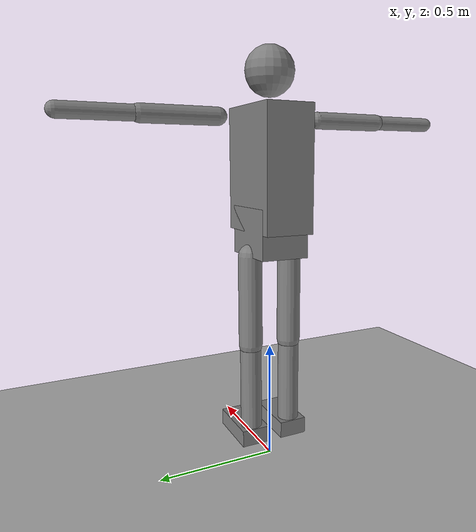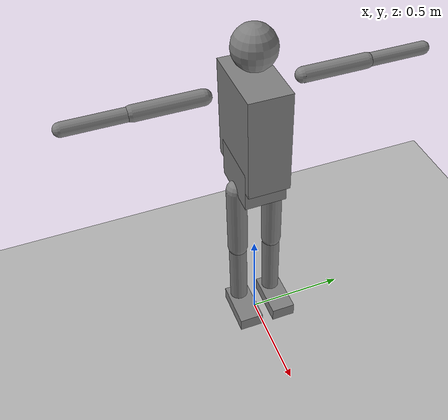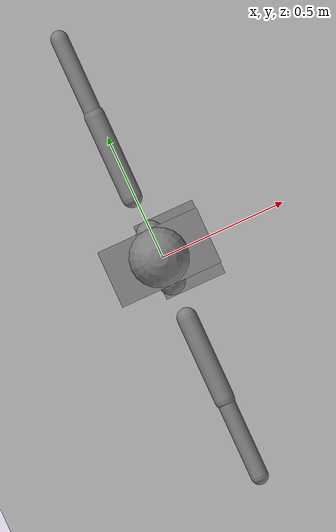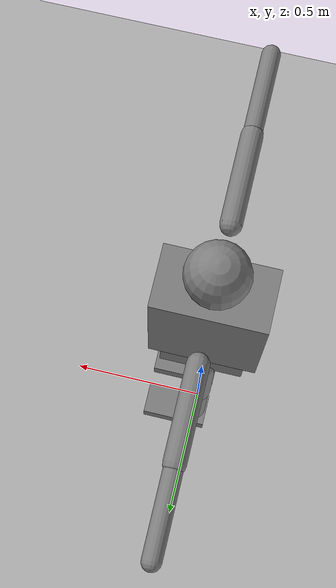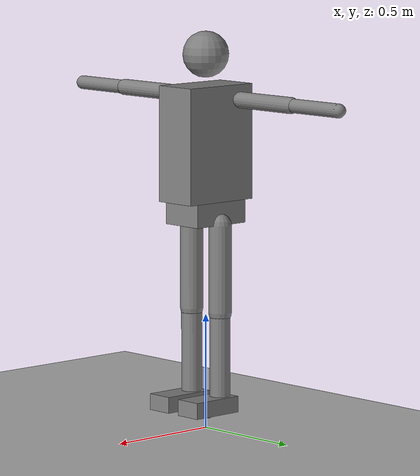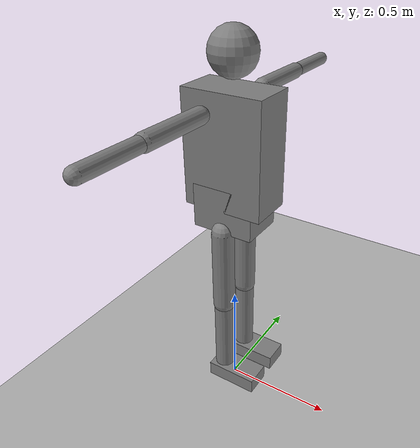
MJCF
<mujoco model="simplified_humanoid_tbd">
  <compiler angle="radian" meshdir="assets/mesh" texturedir="assets/texture"/>
  <option timestep="0.001" integrator="implicitfast" gravity="0 0 -9.81"/>
  <default>
    <joint limited="true" damping="0.05"/>
    <geom friction="0.9 0.02 0.001" condim="3"/>
  </default>
  <include file="body.xml"/>
  <include file="actuators.xml"/>
  <include file="sensors.xml"/>
  <include file="contact.xml"/>
</mujoco>

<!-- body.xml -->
<mujocoinclude>
  <!-- Placeholder geometry for architecture validation only. Dimensions,
       mass and inertia remain TBD pending CAD and identification. -->
  <worldbody>
    <geom name="floor" type="plane" size="5 5 0.1" rgba="0.7 0.7 0.7 1"/>
    <body name="pelvis" pos="0 0 1.0">
      <freejoint name="pelvis_free"/>
      <geom name="pelvis_collision" type="box" size="0.14 0.10 0.10" mass="3.0"/>
      <body name="torso" pos="0 0 0.25">
        <joint name="waist_pitch" type="hinge" axis="0 1 0" range="-0.5 0.5"/>
        <geom name="torso_collision" type="box" size="0.18 0.10 0.25" mass="5.0"/>
        <body name="head" pos="0 0 0.38">
          <joint name="neck_yaw" type="hinge" axis="0 0 1" range="-1.0 1.0"/>
          <geom name="head_collision" type="sphere" size="0.10" mass="1.0"/>
        </body>
        <body name="left_upper_arm" pos="0 0.22 0.20">
          <joint name="left_shoulder" type="ball"/>
          <geom type="capsule" fromto="0 0 0 0 0.30 0" size="0.035" mass="0.7"/>
          <body name="left_forearm" pos="0 0.30 0">
            <joint name="left_elbow" type="hinge" axis="1 0 0" range="0 2.4"/>
            <geom type="capsule" fromto="0 0 0 0 0.28 0" size="0.03" mass="0.5"/>
          </body>
        </body>
        <body name="right_upper_arm" pos="0 -0.22 0.20">
          <joint name="right_shoulder" type="ball"/>
          <geom type="capsule" fromto="0 0 0 0 -0.30 0" size="0.035" mass="0.7"/>
          <body name="right_forearm" pos="0 -0.30 0">
            <joint name="right_elbow" type="hinge" axis="1 0 0" range="-2.4 0"/>
            <geom type="capsule" fromto="0 0 0 0 -0.28 0" size="0.03" mass="0.5"/>
          </body>
        </body>
      </body>
      <body name="left_thigh" pos="0 0.09 -0.10">
        <joint name="left_hip" type="ball"/>
        <geom type="capsule" fromto="0 0 0 0 0 -0.38" size="0.05" mass="1.5"/>
        <body name="left_shin" pos="0 0 -0.38">
          <joint name="left_knee" type="hinge" axis="0 1 0" range="0 2.2"/>
          <geom type="capsule" fromto="0 0 0 0 0 -0.38" size="0.045" mass="1.1"/>
          <body name="left_foot" pos="0 0 -0.40">
            <joint name="left_ankle" type="hinge" axis="0 1 0" range="-0.6 0.6"/>
            <geom type="box" size="0.12 0.06 0.035" pos="0.07 0 0" mass="0.4"/>
            <site name="left_foot_contact" pos="0.07 0 -0.035" size="0.02"/>
          </body>
        </body>
      </body>
      <body name="right_thigh" pos="0 -0.09 -0.10">
        <joint name="right_hip" type="ball"/>
        <geom type="capsule" fromto="0 0 0 0 0 -0.38" size="0.05" mass="1.5"/>
        <body name="right_shin" pos="0 0 -0.38">
          <joint name="right_knee" type="hinge" axis="0 1 0" range="0 2.2"/>
          <geom type="capsule" fromto="0 0 0 0 0 -0.38" size="0.045" mass="1.1"/>
          <body name="right_foot" pos="0 0 -0.40">
            <joint name="right_ankle" type="hinge" axis="0 1 0" range="-0.6 0.6"/>
            <geom type="box" size="0.12 0.06 0.035" pos="0.07 0 0" mass="0.4"/>
            <site name="right_foot_contact" pos="0.07 0 -0.035" size="0.02"/>
          </body>
        </body>
      </body>
    </body>
  </worldbody>
</mujocoinclude>

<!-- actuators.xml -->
<mujocoinclude>
  <!-- Actuator Component dynamics stay in ai::actuator. These motors are
       optional direct-effort hooks for model debugging only. -->
  <actuator>
    <motor name="debug_waist" joint="waist_pitch" gear="1"/>
    <motor name="debug_left_elbow" joint="left_elbow" gear="1"/>
    <motor name="debug_right_elbow" joint="right_elbow" gear="1"/>
  </actuator>
</mujocoinclude>

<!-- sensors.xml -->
<mujocoinclude>
  <sensor>
    <framequat name="pelvis_orientation" objtype="body" objname="pelvis"/>
    <frameangvel name="pelvis_angular_velocity" objtype="body" objname="pelvis"/>
    <jointpos name="left_elbow_position" joint="left_elbow"/>
    <jointvel name="left_elbow_velocity" joint="left_elbow"/>
    <touch name="left_foot_touch" site="left_foot_contact"/>
    <touch name="right_foot_touch" site="right_foot_contact"/>
  </sensor>
</mujocoinclude>

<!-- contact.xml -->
<mujocoinclude>
  <contact>
    <exclude body1="left_thigh" body2="left_shin"/>
    <exclude body1="right_thigh" body2="right_shin"/>
  </contact>
</mujocoinclude>
